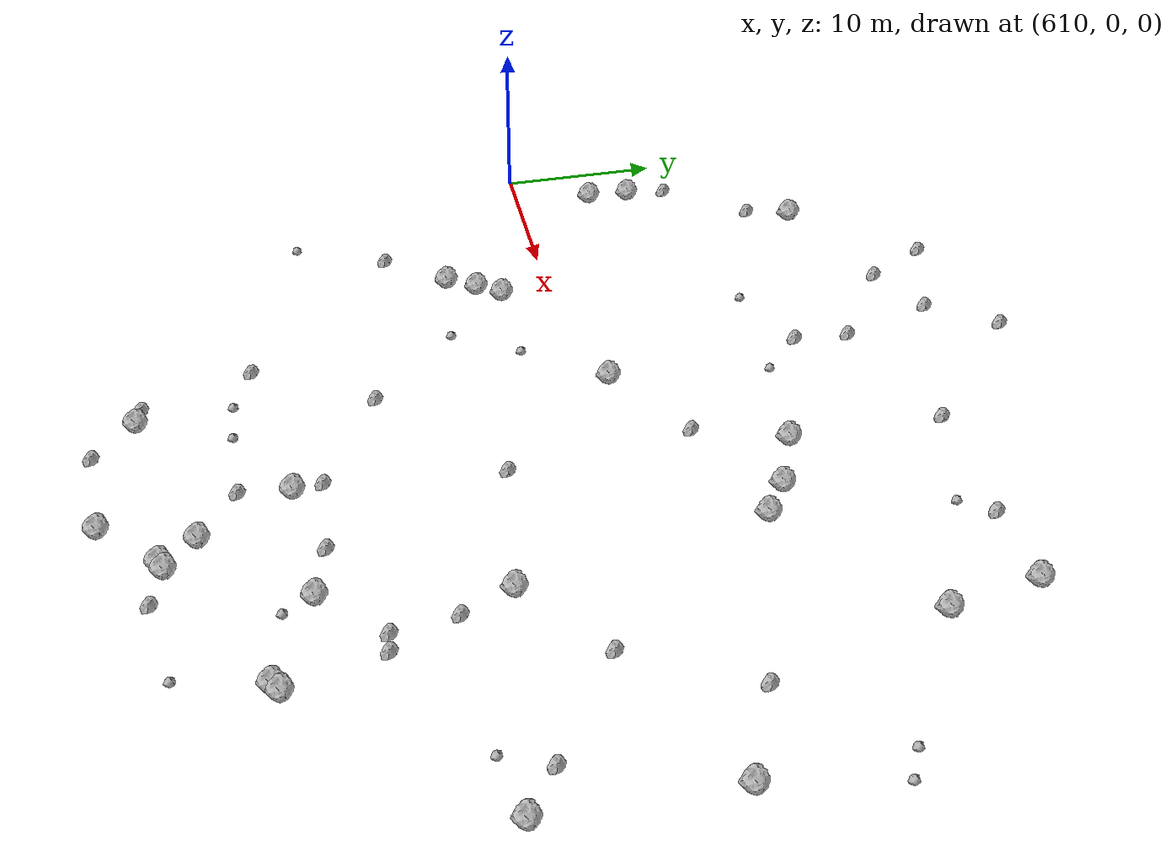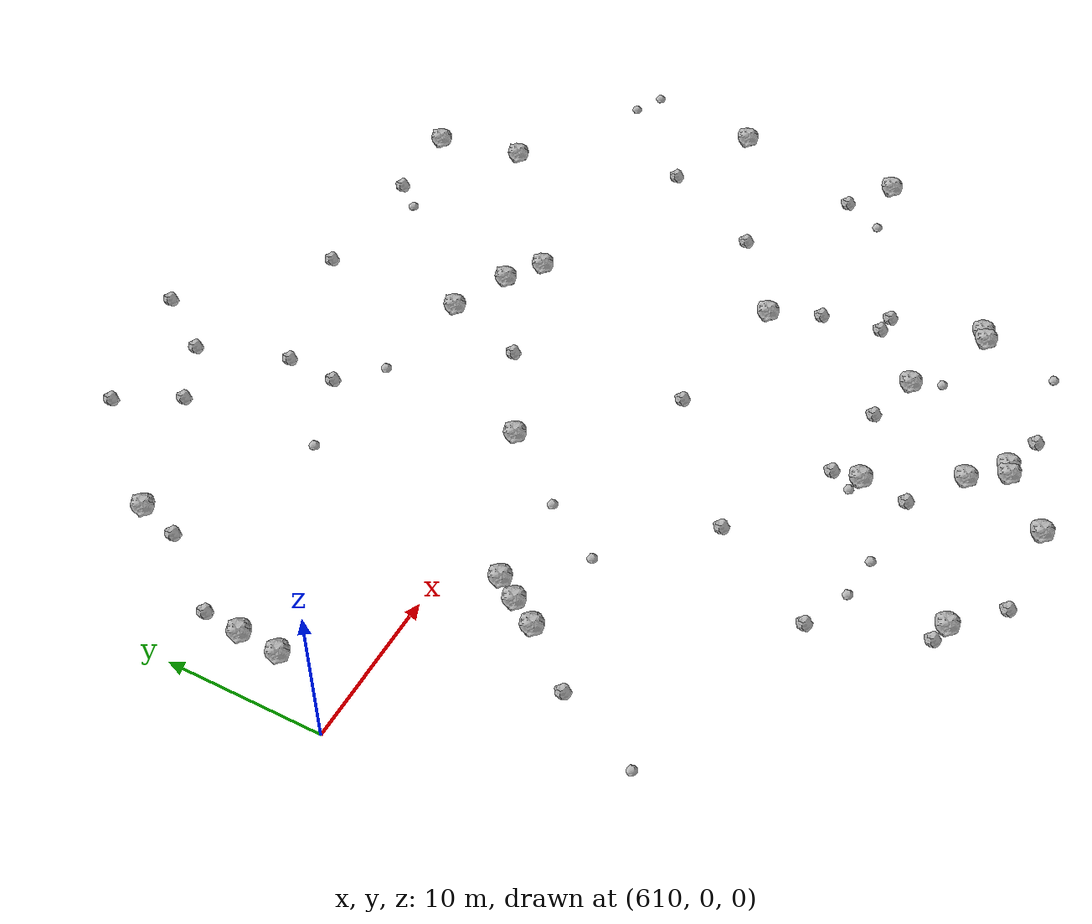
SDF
<sdf version="1.6">
 <world name="default">
  <include><uri>model://sun</uri></include>
  <model name="rock1_16_3">
   <include><uri>model://rock1</uri><pose>621.5719280511111 -6.430504113826288 0.5 0 0 0</pose></include>
  </model>
  <model name="rock1_16_4">
   <include><uri>model://rock1</uri><pose>632.5979011249644 -26.76691536825034 0.5 0 0 0</pose></include>
  </model>
  <model name="rock1_16_5">
   <include><uri>model://rock1</uri><pose>645.5537572943024 -25.64616884977387 0.5 0 0 0</pose></include>
  </model>
  <model name="rock1_16_6">
   <include><uri>model://rock1</uri><pose>650.80883331798 -7.411162220644826 0.5 0 0 0</pose></include>
  </model>
  <model name="rock1_16_7">
   <include><uri>model://rock1</uri><pose>641.7357712738838 10.673771449258219 0.5 0 0 0</pose></include>
  </model>
  <model name="rock1_16_8">
   <include><uri>model://rock1</uri><pose>640.4383484750316 -18.246352408596707 0.5 0 0 0</pose></include>
  </model>
  <model name="rock1_16_9">
   <include><uri>model://rock1</uri><pose>643.4550197301461 -23.741028369062008 0.5 0 0 0</pose></include>
  </model>
  <model name="rock1_16_10">
   <include><uri>model://rock1</uri><pose>618.3282942120283 17.964061471270917 0.5 0 0 0</pose></include>
  </model>
  <model name="rock1_16_11">
   <include><uri>model://rock1</uri><pose>613.4456987944251 7.650804672658275 0.5 0 0 0</pose></include>
  </model>
  <model name="rock1_16_12">
   <include><uri>model://rock1</uri><pose>657.0651141528365 14.682507928434418 0.5 0 0 0</pose></include>
  </model>
  <model name="rock1_16_13">
   <include><uri>model://rock1</uri><pose>655.0869973121681 -20.676124802594607 0.5 0 0 0</pose></include>
  </model>
  <model name="rock1_16_14">
   <include><uri>model://rock1</uri><pose>623.7177414152384 -3.152765726500121 0.5 0 0 0</pose></include>
  </model>
  <model name="rock1_16_15">
   <include><uri>model://rock1</uri><pose>622.6963905057072 -4.647269066744119 0.5 0 0 0</pose></include>
  </model>
  <model name="rock1_16_16">
   <include><uri>model://rock1</uri><pose>666.0942577005828 -9.723469479691698 0.5 0 0 0</pose></include>
  </model>
  <model name="rock1_16_17">
   <include><uri>model://rock1</uri><pose>655.6953638159439 -20.277774613976327 0.5 0 0 0</pose></include>
  </model>
  <model name="rock1_16_18">
   <include><uri>model://rock1</uri><pose>645.5965723948036 9.095575569118374 0.5 0 0 0</pose></include>
  </model>
  <model name="rock1_16_19">
   <include><uri>model://rock1</uri><pose>647.8665019182132 7.576230334587777 0.5 0 0 0</pose></include>
  </model>
  <model name="rock1_16_20">
   <include><uri>model://rock1</uri><pose>644.9256732296633 -25.911868157126353 0.5 0 0 0</pose></include>
  </model>
  <model name="rock1_16_21">
   <include><uri>model://rock1</uri><pose>655.9266942114537 20.26637125516652 0.5 0 0 0</pose></include>
  </model>
  <model name="rock1_16_22">
   <include><uri>model://rock1</uri><pose>613.278325946131 4.96306322027614 0.5 0 0 0</pose></include>
  </model>
  <model name="rock1_16_23">
   <include><uri>model://rock1</uri><pose>641.5545164657923 -29.156980387795095 0.5 0 0 0</pose></include>
  </model>
  <model name="rock1_16_24">
   <include><uri>model://rock1</uri><pose>633.786580910102 1.645486063642302 0.5 0 0 0</pose></include>
  </model>
  <model name="rock1_16_25">
   <include><uri>model://rock1</uri><pose>649.2291528033599 -17.896125221258238 0.5 0 0 0</pose></include>
  </model>
  <model name="rock1_16_26">
   <include><uri>model://rock1</uri><pose>666.2662359386807 1.2686576858613172 0.5 0 0 0</pose></include>
  </model>
  <model name="rock2_16_0">
   <include><uri>model://rock2</uri><pose>617.4415464161665 15.22855386646011 0.3 0 0 0</pose></include>
  </model>
  <model name="rock2_16_1">
   <include><uri>model://rock2</uri><pose>654.0483450062309 -14.553009209922386 0.3 0 0 0</pose></include>
  </model>
  <model name="rock2_16_2">
   <include><uri>model://rock2</uri><pose>648.1200790280235 -26.48362314803373 0.3 0 0 0</pose></include>
  </model>
  <model name="rock2_16_3">
   <include><uri>model://rock2</uri><pose>650.353859742914 20.09082031917014 0.3 0 0 0</pose></include>
  </model>
  <model name="rock2_16_4">
   <include><uri>model://rock2</uri><pose>639.7971189448559 5.256652240386558 0.3 0 0 0</pose></include>
  </model>
  <model name="rock2_16_5">
   <include><uri>model://rock2</uri><pose>613.6717653396978 10.228960566825187 0.3 0 0 0</pose></include>
  </model>
  <model name="rock2_16_6">
   <include><uri>model://rock2</uri><pose>656.3494351483089 -3.236317339009368 0.3 0 0 0</pose></include>
  </model>
  <model name="rock2_16_7">
   <include><uri>model://rock2</uri><pose>663.1885135755459 -7.702003070635918 0.3 0 0 0</pose></include>
  </model>
  <model name="rock2_16_8">
   <include><uri>model://rock2</uri><pose>632.359444456085 13.984573690594402 0.3 0 0 0</pose></include>
  </model>
  <model name="rock2_16_9">
   <include><uri>model://rock2</uri><pose>640.1684204876218 -16.483865762537313 0.3 0 0 0</pose></include>
  </model>
  <model name="rock2_16_10">
   <include><uri>model://rock2</uri><pose>624.4366573798357 25.118571437978957 0.3 0 0 0</pose></include>
  </model>
  <model name="rock2_16_11">
   <include><uri>model://rock2</uri><pose>641.2273621008305 -5.989991547918766 0.3 0 0 0</pose></include>
  </model>
  <model name="rock2_16_12">
   <include><uri>model://rock2</uri><pose>639.997140514066 -21.31147344667942 0.3 0 0 0</pose></include>
  </model>
  <model name="rock2_16_13">
   <include><uri>model://rock2</uri><pose>652.1794346150507 -10.55417488069147 0.3 0 0 0</pose></include>
  </model>
  <model name="rock2_16_14">
   <include><uri>model://rock2</uri><pose>632.6232210632363 17.393224817236295 0.3 0 0 0</pose></include>
  </model>
  <model name="rock2_16_15">
   <include><uri>model://rock2</uri><pose>660.2083574620583 3.89010474489141 0.3 0 0 0</pose></include>
  </model>
  <model name="rock2_16_16">
   <include><uri>model://rock2</uri><pose>633.0633284458173 -12.587649482065967 0.3 0 0 0</pose></include>
  </model>
  <model name="rock2_16_17">
   <include><uri>model://rock2</uri><pose>618.4451635715083 -10.083598450182663 0.3 0 0 0</pose></include>
  </model>
  <model name="rock2_16_18">
   <include><uri>model://rock2</uri><pose>633.4727541425597 27.258138764005253 0.3 0 0 0</pose></include>
  </model>
  <model name="rock2_16_19">
   <include><uri>model://rock2</uri><pose>630.6675835133206 23.244759205498084 0.3 0 0 0</pose></include>
  </model>
  <model name="rock2_16_20">
   <include><uri>model://rock2</uri><pose>626.6735058802052 21.224387616370763 0.3 0 0 0</pose></include>
  </model>
  <model name="rock2_16_21">
   <include><uri>model://rock2</uri><pose>628.9094652381987 -19.696946272915888 0.3 0 0 0</pose></include>
  </model>
  <model name="rock2_16_22">
   <include><uri>model://rock2</uri><pose>645.6296433378626 -16.90174284273983 0.3 0 0 0</pose></include>
  </model>
  <model name="rock2_16_23">
   <include><uri>model://rock2</uri><pose>631.2671176586367 -26.414818831875966 0.3 0 0 0</pose></include>
  </model>
  <model name="rock2_16_24">
   <include><uri>model://rock2</uri><pose>652.7505564840657 -14.393397474316188 0.3 0 0 0</pose></include>
  </model>
  <model name="rock2_16_25">
   <include><uri>model://rock2</uri><pose>641.6916270475535 20.20182180473492 0.3 0 0 0</pose></include>
  </model>
  <model name="rock2_16_26">
   <include><uri>model://rock2</uri><pose>635.267632691156 -29.368152967018467 0.3 0 0 0</pose></include>
  </model>
  <model name="rock3_16_0">
   <include><uri>model://rock3</uri><pose>631.9795030973445 -21.029870997815493 0.2 0 0 0</pose></include>
  </model>
  <model name="rock3_16_1">
   <include><uri>model://rock3</uri><pose>639.3321601095851 -17.96827896927553 0.2 0 0 0</pose></include>
  </model>
  <model name="rock3_16_2">
   <include><uri>model://rock3</uri><pose>615.7994616223177 -15.685338342816348 0.2 0 0 0</pose></include>
  </model>
  <model name="rock3_16_3">
   <include><uri>model://rock3</uri><pose>667.507398200536 8.806636318234936 0.2 0 0 0</pose></include>
  </model>
  <model name="rock3_16_4">
   <include><uri>model://rock3</uri><pose>634.8463905569159 11.596176563310642 0.2 0 0 0</pose></include>
  </model>
  <model name="rock3_16_5">
   <include><uri>model://rock3</uri><pose>650.0654186769201 -19.704745258060605 0.2 0 0 0</pose></include>
  </model>
  <model name="rock3_16_6">
   <include><uri>model://rock3</uri><pose>665.5942116375359 9.739314128406036 0.2 0 0 0</pose></include>
  </model>
  <model name="rock3_16_7">
   <include><uri>model://rock3</uri><pose>627.1940701669524 11.903203530654018 0.2 0 0 0</pose></include>
  </model>
  <model name="rock3_16_8">
   <include><uri>model://rock3</uri><pose>653.7412307120692 -25.684568790985093 0.2 0 0 0</pose></include>
  </model>
  <model name="rock3_16_9">
   <include><uri>model://rock3</uri><pose>629.944756964626 -3.072709188276633 0.2 0 0 0</pose></include>
  </model>
  <model name="rock3_16_10">
   <include><uri>model://rock3</uri><pose>627.4471004638951 -7.073746805672251 0.2 0 0 0</pose></include>
  </model>
  <model name="rock3_16_11">
   <include><uri>model://rock3</uri><pose>661.8994062735006 -10.408520423165633 0.2 0 0 0</pose></include>
  </model>
  <model name="rock3_16_12">
   <include><uri>model://rock3</uri><pose>634.8445167184957 -21.23822674996786 0.2 0 0 0</pose></include>
  </model>
  <model name="rock3_16_13">
   <include><uri>model://rock3</uri><pose>648.8944031236895 18.28490741228589 0.2 0 0 0</pose></include>
  </model>
 </world>
</sdf>
